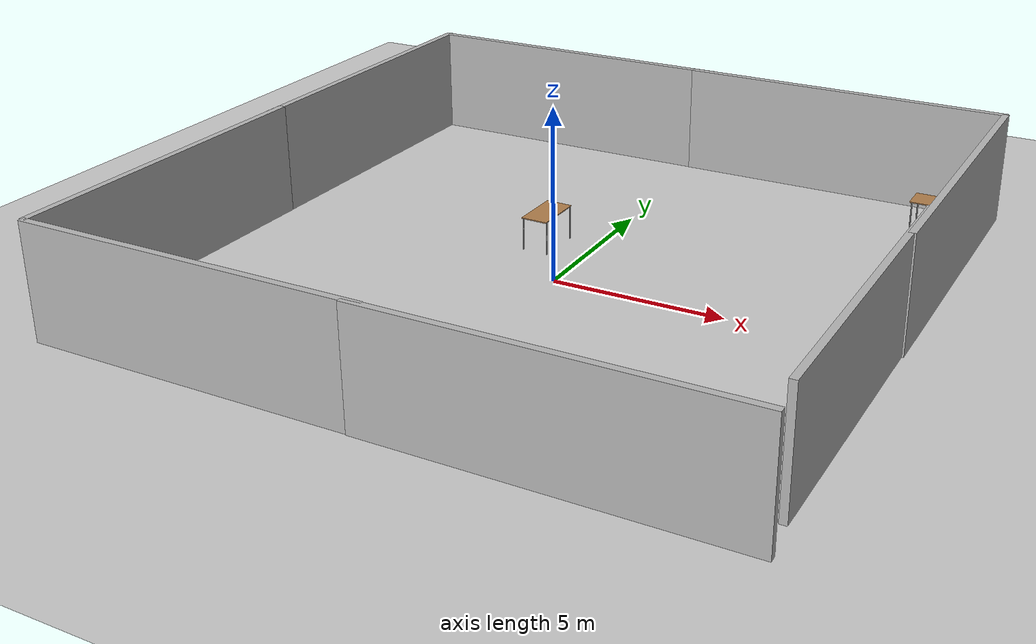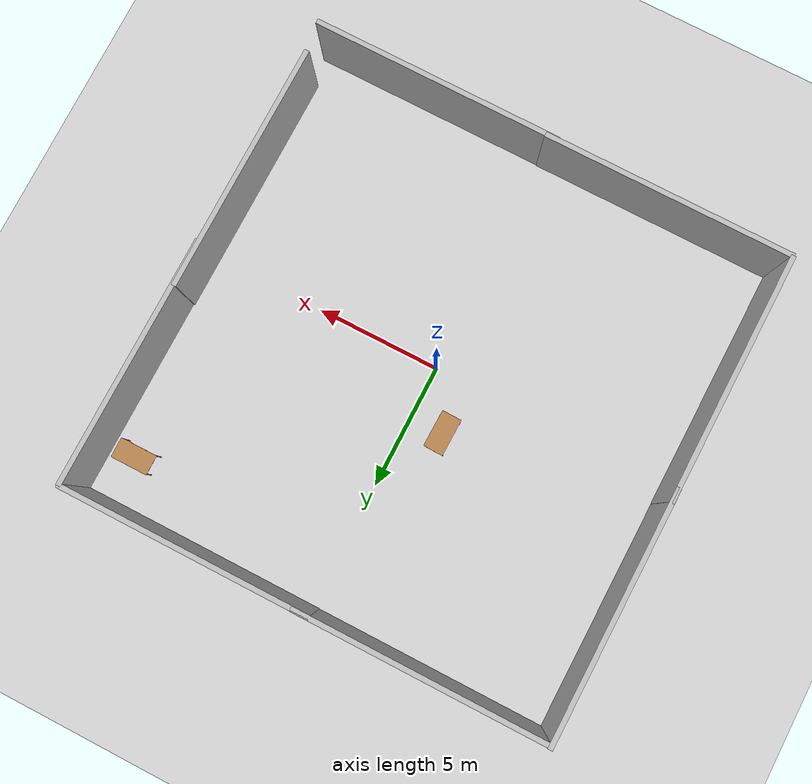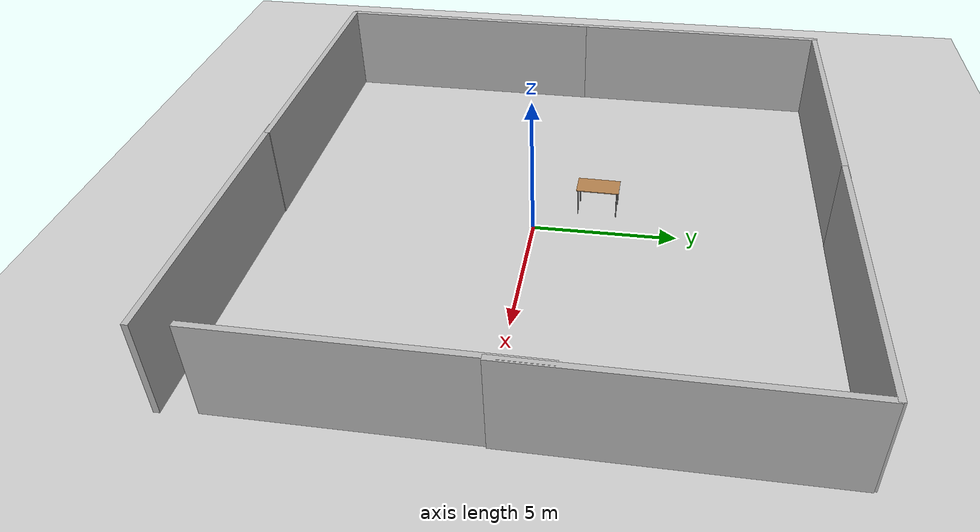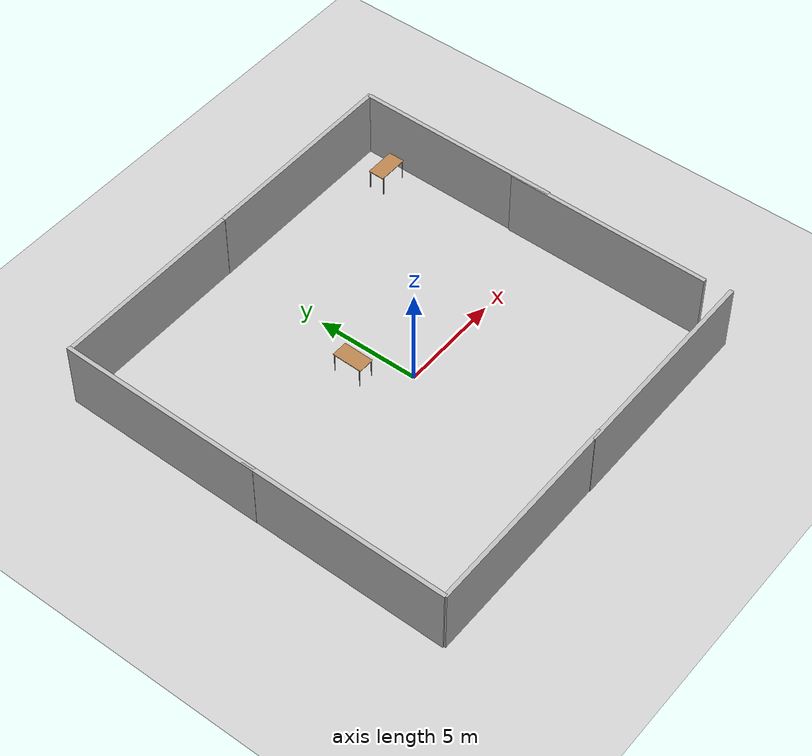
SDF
<sdf version="1.9">
 <world name="empty">
  <physics name="1ms" type="ignored">
   <max_step_size>0.001</max_step_size>
   <real_time_factor>1</real_time_factor>
   <real_time_update_rate>1000</real_time_update_rate>
  </physics>
  <plugin name="gz::sim::systems::Physics" filename="ignition-gazebo-physics-system"/>
  <plugin name="gz::sim::systems::UserCommands" filename="ignition-gazebo-user-commands-system"/>
  <plugin name="gz::sim::systems::SceneBroadcaster" filename="ignition-gazebo-scene-broadcaster-system"/>
  <plugin name="gz::sim::systems::Contact" filename="ignition-gazebo-contact-system"/>
  <gravity>0 0 -9.8</gravity>
  <magnetic_field>6e-06 2.3e-05 -4.2e-05</magnetic_field>
  <atmosphere type="adiabatic"/>
  <scene><ambient>0.4 0.4 0.4 1</ambient><background>0.7 0.7 0.7 1</background><shadows>true</shadows></scene>
  <model name="ground_plane">
   <static>true</static>
   <link name="link">
    <collision name="collision">
     <geometry><plane><normal>0 0 1</normal><size>100 100</size></plane></geometry>
    </collision>
    <visual name="visual">
     <geometry><plane><normal>0 0 1</normal><size>100 100</size></plane></geometry>
     <material>
      <ambient>0.8 0.8 0.8 1</ambient>
      <diffuse>0.8 0.8 0.8 1</diffuse>
      <specular>0.8 0.8 0.8 1</specular>
     </material>
    </visual>
    <inertial>
     <mass>1</mass>
     <inertia><ixx>1</ixx><ixy>0</ixy><ixz>0</ixz><iyy>1</iyy><iyz>0</iyz><izz>1</izz></inertia>
    </inertial>
   </link>
  </model>
  <model name="cutout_wall">
   <static>true</static>
   <link name="link">
    <pose>0 0 1.4 0 -0 0</pose>
    <collision name="collision">
     <geometry><box><size>10 0.2 3.8</size></box></geometry>
     <surface>
      <contact>
       <collide_without_contact>true</collide_without_contact>
       <collide_without_contact_bitmask>2</collide_without_contact_bitmask>
      </contact>
     </surface>
    </collision>
    <visual name="visual">
     <cast_shadows>false</cast_shadows>
     <geometry><box><size>10 0.2 3.8</size></box></geometry>
     <material>
      <script>
       <uri>https://fuel.gazebosim.org/1.0/openrobotics/models/cutout wall/2/files/materials/scripts</uri>
       <uri>https://fuel.gazebosim.org/1.0/openrobotics/models/cutout wall/2/files/materials/textures</uri>
       <name>drc_practice/cutout_wall</name>
      </script>
     </material>
    </visual>
    <sensor name="mud_contact" type="contact">
     <always_on>true</always_on>
     <update_rate>1000</update_rate>
     <contact><collision>collision</collision><topic>__default_topic__</topic></contact>
    </sensor>
    <inertial>
     <mass>1</mass>
     <inertia><ixx>1</ixx><ixy>0</ixy><ixz>0</ixz><iyy>1</iyy><iyz>0</iyz><izz>1</izz></inertia>
    </inertial>
   </link>
   <plugin name="gazebo_mud" filename="libMudPlugin.so">
    <contact_sensor_name>link/mud_contact</contact_sensor_name>
    <stiffness>0.0</stiffness>
    <damping>40.0</damping>
    <contact_surface_bitmask>2</contact_surface_bitmask>
    <link_name>drill::link</link_name>
   </plugin>
   <pose>4.72687 10.1225 0 0 -0 0</pose>
  </model>
  <model name="cutout_wall_1">
   <static>true</static>
   <link name="link">
    <pose>0 0 1.4 0 0 0</pose>
    <collision name="collision">
     <geometry><box><size>10 0.2 3.8</size></box></geometry>
     <surface>
      <contact>
       <collide_without_contact>true</collide_without_contact>
       <collide_without_contact_bitmask>2</collide_without_contact_bitmask>
      </contact>
     </surface>
    </collision>
    <visual name="visual">
     <cast_shadows>false</cast_shadows>
     <geometry><box><size>10 0.2 3.8</size></box></geometry>
     <material>
      <script>
       <uri>https://fuel.gazebosim.org/1.0/openrobotics/models/cutout wall/2/files/materials/scripts</uri>
       <uri>https://fuel.gazebosim.org/1.0/openrobotics/models/cutout wall/2/files/materials/textures</uri>
       <name>drc_practice/cutout_wall</name>
      </script>
     </material>
    </visual>
    <sensor name="mud_contact" type="contact">
     <always_on>true</always_on>
     <update_rate>1000</update_rate>
     <contact><collision>collision</collision><topic>__default_topic__</topic></contact>
    </sensor>
   </link>
   <plugin name="gazebo_mud" filename="libMudPlugin.so">
    <contact_sensor_name>link/mud_contact</contact_sensor_name>
    <stiffness>0.0</stiffness>
    <damping>40.0</damping>
    <contact_surface_bitmask>2</contact_surface_bitmask>
    <link_name>drill::link</link_name>
   </plugin>
   <pose>-4.54945 10.1336 0 0 -0 0</pose>
  </model>
  <model name="cutout_wall_1_1">
   <static>true</static>
   <link name="link">
    <pose>0 0 1.4 0 0 0</pose>
    <collision name="collision">
     <geometry><box><size>10 0.2 3.8</size></box></geometry>
     <surface>
      <contact>
       <collide_without_contact>true</collide_without_contact>
       <collide_without_contact_bitmask>2</collide_without_contact_bitmask>
      </contact>
     </surface>
    </collision>
    <visual name="visual">
     <cast_shadows>false</cast_shadows>
     <geometry><box><size>10 0.2 3.8</size></box></geometry>
     <material>
      <script>
       <uri>https://fuel.gazebosim.org/1.0/openrobotics/models/cutout wall/2/files/materials/scripts</uri>
       <uri>https://fuel.gazebosim.org/1.0/openrobotics/models/cutout wall/2/files/materials/textures</uri>
       <name>drc_practice/cutout_wall</name>
      </script>
     </material>
    </visual>
    <sensor name="mud_contact" type="contact">
     <always_on>true</always_on>
     <update_rate>1000</update_rate>
     <contact><collision>collision</collision><topic>__default_topic__</topic></contact>
    </sensor>
   </link>
   <plugin name="gazebo_mud" filename="libMudPlugin.so">
    <contact_sensor_name>link/mud_contact</contact_sensor_name>
    <stiffness>0.0</stiffness>
    <damping>40.0</damping>
    <contact_surface_bitmask>2</contact_surface_bitmask>
    <link_name>drill::link</link_name>
   </plugin>
   <pose>-9.63675 5.25499 0 0 0 -1.57987</pose>
  </model>
  <model name="cutout_wall_1_1_1">
   <static>true</static>
   <link name="link">
    <pose>0 0 1.4 0 0 0</pose>
    <collision name="collision">
     <geometry><box><size>10 0.2 3.8</size></box></geometry>
     <surface>
      <contact>
       <collide_without_contact>true</collide_without_contact>
       <collide_without_contact_bitmask>2</collide_without_contact_bitmask>
      </contact>
     </surface>
    </collision>
    <visual name="visual">
     <cast_shadows>false</cast_shadows>
     <geometry><box><size>10 0.2 3.8</size></box></geometry>
     <material>
      <script>
       <uri>https://fuel.gazebosim.org/1.0/openrobotics/models/cutout wall/2/files/materials/scripts</uri>
       <uri>https://fuel.gazebosim.org/1.0/openrobotics/models/cutout wall/2/files/materials/textures</uri>
       <name>drc_practice/cutout_wall</name>
      </script>
     </material>
    </visual>
    <sensor name="mud_contact" type="contact">
     <always_on>true</always_on>
     <update_rate>1000</update_rate>
     <contact><collision>collision</collision><topic>__default_topic__</topic></contact>
    </sensor>
   </link>
   <plugin name="gazebo_mud" filename="libMudPlugin.so">
    <contact_sensor_name>link/mud_contact</contact_sensor_name>
    <stiffness>0.0</stiffness>
    <damping>40.0</damping>
    <contact_surface_bitmask>2</contact_surface_bitmask>
    <link_name>drill::link</link_name>
   </plugin>
   <pose>-9.71211 -4.12512 0 0 0 -1.57987</pose>
  </model>
  <model name="cutout_wall_2">
   <static>true</static>
   <link name="link">
    <pose>0 0 1.4 0 0 0</pose>
    <collision name="collision">
     <geometry><box><size>10 0.2 3.8</size></box></geometry>
     <surface>
      <contact>
       <collide_without_contact>true</collide_without_contact>
       <collide_without_contact_bitmask>2</collide_without_contact_bitmask>
      </contact>
     </surface>
    </collision>
    <visual name="visual">
     <cast_shadows>false</cast_shadows>
     <geometry><box><size>10 0.2 3.8</size></box></geometry>
     <material>
      <script>
       <uri>https://fuel.gazebosim.org/1.0/openrobotics/models/cutout wall/2/files/materials/scripts</uri>
       <uri>https://fuel.gazebosim.org/1.0/openrobotics/models/cutout wall/2/files/materials/textures</uri>
       <name>drc_practice/cutout_wall</name>
      </script>
     </material>
    </visual>
    <sensor name="mud_contact" type="contact">
     <always_on>true</always_on>
     <update_rate>1000</update_rate>
     <contact><collision>collision</collision><topic>__default_topic__</topic></contact>
    </sensor>
   </link>
   <plugin name="gazebo_mud" filename="libMudPlugin.so">
    <contact_sensor_name>link/mud_contact</contact_sensor_name>
    <stiffness>0.0</stiffness>
    <damping>40.0</damping>
    <contact_surface_bitmask>2</contact_surface_bitmask>
    <link_name>drill::link</link_name>
   </plugin>
   <pose>-4.79711 -9.10415 0 0 -0 0</pose>
  </model>
  <model name="cutout_wall_3">
   <static>true</static>
   <link name="link">
    <pose>0 0 1.4 0 0 0</pose>
    <collision name="collision">
     <geometry><box><size>10 0.2 3.8</size></box></geometry>
     <surface>
      <contact>
       <collide_without_contact>true</collide_without_contact>
       <collide_without_contact_bitmask>2</collide_without_contact_bitmask>
      </contact>
     </surface>
    </collision>
    <visual name="visual">
     <cast_shadows>false</cast_shadows>
     <geometry><box><size>10 0.2 3.8</size></box></geometry>
     <material>
      <script>
       <uri>https://fuel.gazebosim.org/1.0/openrobotics/models/cutout wall/2/files/materials/scripts</uri>
       <uri>https://fuel.gazebosim.org/1.0/openrobotics/models/cutout wall/2/files/materials/textures</uri>
       <name>drc_practice/cutout_wall</name>
      </script>
     </material>
    </visual>
    <sensor name="mud_contact" type="contact">
     <always_on>true</always_on>
     <update_rate>1000</update_rate>
     <contact><collision>collision</collision><topic>__default_topic__</topic></contact>
    </sensor>
   </link>
   <plugin name="gazebo_mud" filename="libMudPlugin.so">
    <contact_sensor_name>link/mud_contact</contact_sensor_name>
    <stiffness>0.0</stiffness>
    <damping>40.0</damping>
    <contact_surface_bitmask>2</contact_surface_bitmask>
    <link_name>drill::link</link_name>
   </plugin>
   <pose>4.66508 -9.12846 0 0 -0 0</pose>
  </model>
  <model name="cutout_wall_1_1_2_1">
   <static>true</static>
   <link name="link">
    <pose>0 0 1.4 0 0 0</pose>
    <collision name="collision">
     <geometry><box><size>10 0.2 3.8</size></box></geometry>
     <surface>
      <contact>
       <collide_without_contact>true</collide_without_contact>
       <collide_without_contact_bitmask>2</collide_without_contact_bitmask>
      </contact>
     </surface>
    </collision>
    <visual name="visual">
     <cast_shadows>false</cast_shadows>
     <geometry><box><size>10 0.2 3.8</size></box></geometry>
     <material>
      <script>
       <uri>https://fuel.gazebosim.org/1.0/openrobotics/models/cutout wall/2/files/materials/scripts</uri>
       <uri>https://fuel.gazebosim.org/1.0/openrobotics/models/cutout wall/2/files/materials/textures</uri>
       <name>drc_practice/cutout_wall</name>
      </script>
     </material>
    </visual>
    <sensor name="mud_contact" type="contact">
     <always_on>true</always_on>
     <update_rate>1000</update_rate>
     <contact><collision>collision</collision><topic>__default_topic__</topic></contact>
    </sensor>
   </link>
   <plugin name="gazebo_mud" filename="libMudPlugin.so">
    <contact_sensor_name>link/mud_contact</contact_sensor_name>
    <stiffness>0.0</stiffness>
    <damping>40.0</damping>
    <contact_surface_bitmask>2</contact_surface_bitmask>
    <link_name>drill::link</link_name>
   </plugin>
   <pose>9.49259 -2.95645 0 0 0 -1.57987</pose>
  </model>
  <model name="Table">
   <static>true</static>
   <link name="link">
    <collision name="surface">
     <pose>0 0 1.0 0 0 0</pose>
     <geometry><box><size>1.5 0.8 0.03</size></box></geometry>
     <surface><friction><ode><mu>0.59999999999999998</mu><mu2>0.59999999999999998</mu2></ode></friction></surface>
    </collision>
    <visual name="visual1">
     <pose>0 0 1.0 0 0 0</pose>
     <geometry><box><size>1.5 0.8 0.03</size></box></geometry>
     <material>
      <diffuse>1 1 1 1</diffuse>
      <script><uri>file://media/materials/scripts/gazebo.material</uri><name>Gazebo/Wood</name></script>
      <pbr>
       <metal>
        <albedo_map>https://fuel.gazebosim.org/1.0/openrobotics/models/table/4/files/Table_Diffuse.jpg</albedo_map>
       </metal>
      </pbr>
     </material>
    </visual>
    <collision name="front_left_leg">
     <pose>0.68 0.38 0.5 0 0 0</pose>
     <geometry><cylinder><radius>0.02</radius><length>1</length></cylinder></geometry>
    </collision>
    <visual name="front_left_leg">
     <pose>0.68 0.38 0.5 0 0 0</pose>
     <geometry><cylinder><radius>0.02</radius><length>1</length></cylinder></geometry>
     <material>
      <diffuse>0.5 0.5 0.5 1</diffuse>
      <script><uri>file://media/materials/scripts/gazebo.material</uri><name>Gazebo/Grey</name></script>
     </material>
    </visual>
    <collision name="front_right_leg">
     <pose>0.68 -0.38 0.5 0 0 0</pose>
     <geometry><cylinder><radius>0.02</radius><length>1</length></cylinder></geometry>
    </collision>
    <visual name="front_right_leg">
     <pose>0.68 -0.38 0.5 0 0 0</pose>
     <geometry><cylinder><radius>0.02</radius><length>1</length></cylinder></geometry>
     <material>
      <diffuse>0.5 0.5 0.5 1</diffuse>
      <script><uri>file://media/materials/scripts/gazebo.material</uri><name>Gazebo/Grey</name></script>
     </material>
    </visual>
    <collision name="back_right_leg">
     <pose>-0.68 -0.38 0.5 0 0 0</pose>
     <geometry><cylinder><radius>0.02</radius><length>1</length></cylinder></geometry>
    </collision>
    <visual name="back_right_leg">
     <pose>-0.68 -0.38 0.5 0 0 0</pose>
     <geometry><cylinder><radius>0.02</radius><length>1</length></cylinder></geometry>
     <material>
      <diffuse>0.5 0.5 0.5 1</diffuse>
      <script><uri>file://media/materials/scripts/gazebo.material</uri><name>Gazebo/Grey</name></script>
     </material>
    </visual>
    <collision name="back_left_leg">
     <pose>-0.68 0.38 0.5 0 0 0</pose>
     <geometry><cylinder><radius>0.02</radius><length>1</length></cylinder></geometry>
    </collision>
    <visual name="back_left_leg">
     <pose>-0.68 0.38 0.5 0 0 0</pose>
     <geometry><cylinder><radius>0.02</radius><length>1</length></cylinder></geometry>
     <material>
      <diffuse>0.5 0.5 0.5 1</diffuse>
      <script><uri>file://media/materials/scripts/gazebo.material</uri><name>Gazebo/Grey</name></script>
     </material>
    </visual>
    <inertial>
     <mass>1</mass>
     <inertia><ixx>1</ixx><ixy>0</ixy><ixz>0</ixz><iyy>1</iyy><iyz>0</iyz><izz>1</izz></inertia>
    </inertial>
   </link>
   <pose>8.4079 8.16929 0 0 -0 0</pose>
  </model>
  <model name="Table_1">
   <static>true</static>
   <link name="link">
    <collision name="surface">
     <pose>0 0 1.0 0 0 0</pose>
     <geometry><box><size>1.5 0.8 0.03</size></box></geometry>
     <surface><friction><ode><mu>0.59999999999999998</mu><mu2>0.59999999999999998</mu2></ode></friction></surface>
    </collision>
    <visual name="visual1">
     <pose>0 0 1.0 0 0 0</pose>
     <geometry><box><size>1.5 0.8 0.03</size></box></geometry>
     <material>
      <diffuse>1 1 1 1</diffuse>
      <script><uri>file://media/materials/scripts/gazebo.material</uri><name>Gazebo/Wood</name></script>
      <pbr>
       <metal>
        <albedo_map>https://fuel.gazebosim.org/1.0/openrobotics/models/table/4/files/Table_Diffuse.jpg</albedo_map>
       </metal>
      </pbr>
     </material>
    </visual>
    <collision name="front_left_leg">
     <pose>0.68 0.38 0.5 0 0 0</pose>
     <geometry><cylinder><radius>0.02</radius><length>1</length></cylinder></geometry>
    </collision>
    <visual name="front_left_leg">
     <pose>0.68 0.38 0.5 0 0 0</pose>
     <geometry><cylinder><radius>0.02</radius><length>1</length></cylinder></geometry>
     <material>
      <diffuse>0.5 0.5 0.5 1</diffuse>
      <script><uri>file://media/materials/scripts/gazebo.material</uri><name>Gazebo/Grey</name></script>
     </material>
    </visual>
    <collision name="front_right_leg">
     <pose>0.68 -0.38 0.5 0 0 0</pose>
     <geometry><cylinder><radius>0.02</radius><length>1</length></cylinder></geometry>
    </collision>
    <visual name="front_right_leg">
     <pose>0.68 -0.38 0.5 0 0 0</pose>
     <geometry><cylinder><radius>0.02</radius><length>1</length></cylinder></geometry>
     <material>
      <diffuse>0.5 0.5 0.5 1</diffuse>
      <script><uri>file://media/materials/scripts/gazebo.material</uri><name>Gazebo/Grey</name></script>
     </material>
    </visual>
    <collision name="back_right_leg">
     <pose>-0.68 -0.38 0.5 0 0 0</pose>
     <geometry><cylinder><radius>0.02</radius><length>1</length></cylinder></geometry>
    </collision>
    <visual name="back_right_leg">
     <pose>-0.68 -0.38 0.5 0 0 0</pose>
     <geometry><cylinder><radius>0.02</radius><length>1</length></cylinder></geometry>
     <material>
      <diffuse>0.5 0.5 0.5 1</diffuse>
      <script><uri>file://media/materials/scripts/gazebo.material</uri><name>Gazebo/Grey</name></script>
     </material>
    </visual>
    <collision name="back_left_leg">
     <pose>-0.68 0.38 0.5 0 0 0</pose>
     <geometry><cylinder><radius>0.02</radius><length>1</length></cylinder></geometry>
    </collision>
    <visual name="back_left_leg">
     <pose>-0.68 0.38 0.5 0 0 0</pose>
     <geometry><cylinder><radius>0.02</radius><length>1</length></cylinder></geometry>
     <material>
      <diffuse>0.5 0.5 0.5 1</diffuse>
      <script><uri>file://media/materials/scripts/gazebo.material</uri><name>Gazebo/Grey</name></script>
     </material>
    </visual>
   </link>
   <pose>-1.37629 2.15916 0 0 0 -1.59092</pose>
  </model>
  <model name="cutout_wall_1_1_2_1_1">
   <static>true</static>
   <link name="link">
    <pose>0 0 1.4 0 0 0</pose>
    <collision name="collision">
     <geometry><box><size>10 0.2 3.8</size></box></geometry>
     <surface>
      <contact>
       <collide_without_contact>true</collide_without_contact>
       <collide_without_contact_bitmask>2</collide_without_contact_bitmask>
      </contact>
     </surface>
    </collision>
    <visual name="visual">
     <cast_shadows>false</cast_shadows>
     <geometry><box><size>10 0.2 3.8</size></box></geometry>
     <material>
      <script>
       <uri>https://fuel.gazebosim.org/1.0/openrobotics/models/cutout wall/2/files/materials/scripts</uri>
       <uri>https://fuel.gazebosim.org/1.0/openrobotics/models/cutout wall/2/files/materials/textures</uri>
       <name>drc_practice/cutout_wall</name>
      </script>
     </material>
    </visual>
    <sensor name="mud_contact" type="contact">
     <always_on>true</always_on>
     <update_rate>1000</update_rate>
     <contact><collision>collision</collision><topic>__default_topic__</topic></contact>
    </sensor>
   </link>
   <plugin name="gazebo_mud" filename="libMudPlugin.so">
    <contact_sensor_name>link/mud_contact</contact_sensor_name>
    <stiffness>0.0</stiffness>
    <damping>40.0</damping>
    <contact_surface_bitmask>2</contact_surface_bitmask>
    <link_name>drill::link</link_name>
   </plugin>
   <pose>9.61767 5.14139 0 0 0 -1.57987</pose>
  </model>
  <light name="sun" type="directional">
   <pose>0 0 10 0 -0 0</pose>
   <intensity>1</intensity>
   <direction>-0.5 0.1 -0.9</direction>
   <diffuse>0.8 0.8 0.8 1</diffuse>
   <specular>0.2 0.2 0.2 1</specular>
   <attenuation>
    <range>1000</range>
    <linear>0.01</linear>
    <constant>0.90000000000000002</constant>
    <quadratic>0.001</quadratic>
   </attenuation>
   <spot><inner_angle>0</inner_angle><outer_angle>0</outer_angle><falloff>0</falloff></spot>
  </light>
 </world>
</sdf>
